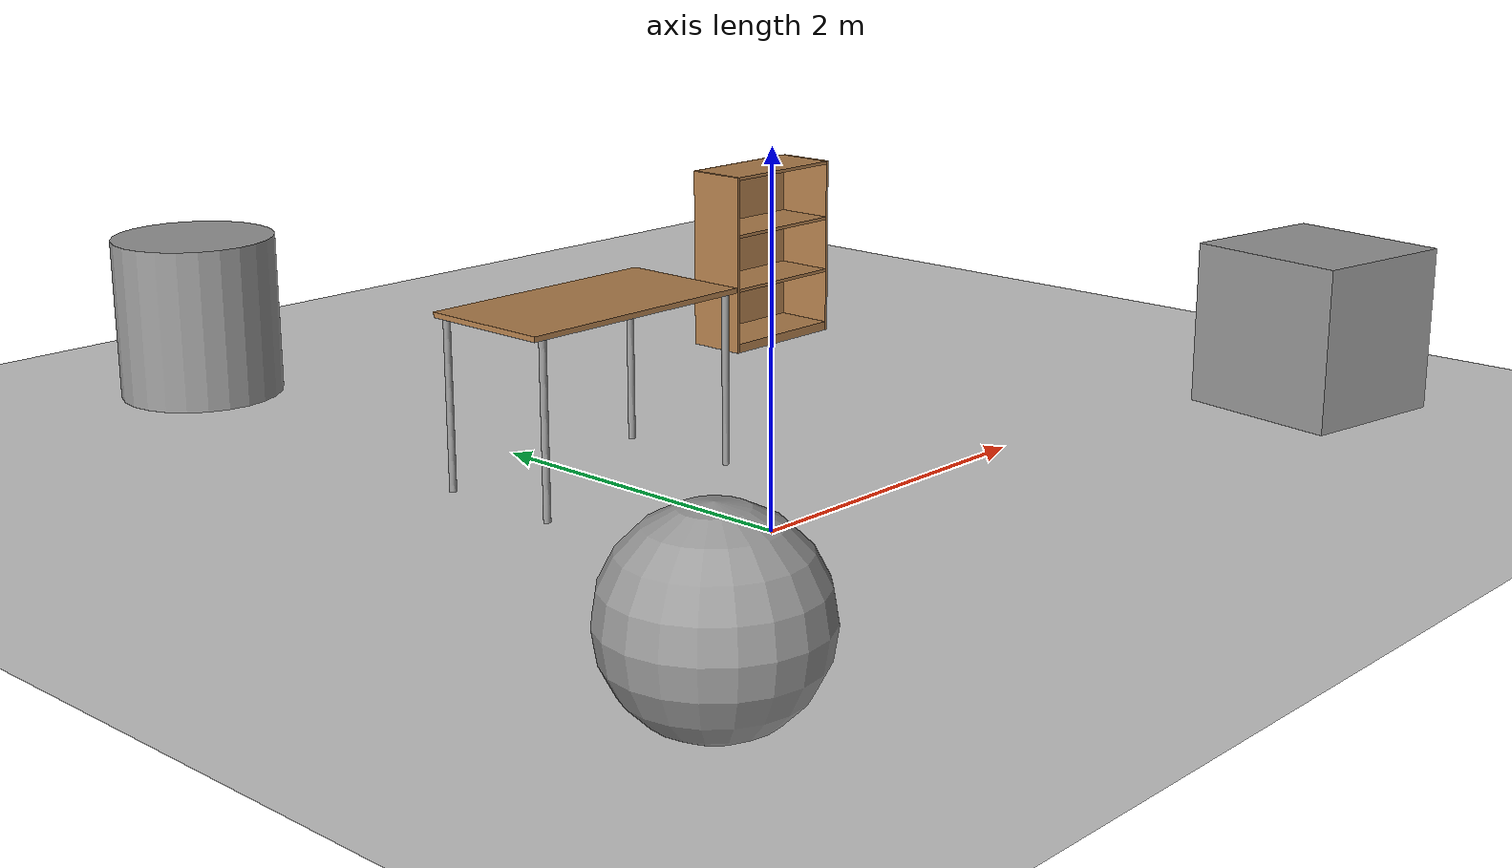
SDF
<sdf version="1.4">
 <world name="default">
  <light name="sun" type="directional">
   <pose>0 0 10 0 -0 0</pose>
   <diffuse>0.8 0.8 0.8 1</diffuse>
   <specular>0.2 0.2 0.2 1</specular>
   <attenuation>
    <range>1000</range>
    <constant>0.9</constant>
    <linear>0.01</linear>
    <quadratic>0.001</quadratic>
   </attenuation>
   <direction>-0.5 0.1 -0.9</direction>
  </light>
  <model name="ground_plane">
   <static>1</static>
   <link name="link">
    <collision name="collision">
     <geometry><plane><normal>0 0 1</normal><size>100 100</size></plane></geometry>
     <surface><friction><ode><mu>100</mu><mu2>50</mu2></ode></friction></surface>
    </collision>
    <visual name="visual">
     <cast_shadows>0</cast_shadows>
     <geometry><plane><normal>0 0 1</normal><size>100 100</size></plane></geometry>
     <material>
      <script><uri>file://media/materials/scripts/gazebo.material</uri><name>Gazebo/Grey</name></script>
     </material>
    </visual>
    <velocity_decay><linear>0</linear><angular>0</angular></velocity_decay>
   </link>
  </model>
  <physics type="ode">
   <max_step_size>0.001</max_step_size>
   <real_time_factor>1</real_time_factor>
   <real_time_update_rate>1000</real_time_update_rate>
   <gravity>0 0 -9.8</gravity>
  </physics>
  <scene><ambient>0.4 0.4 0.4 1</ambient><background>0.7 0.7 0.7 1</background><shadows>1</shadows></scene>
  <spherical_coordinates>
   <surface_model>EARTH_WGS84</surface_model>
   <latitude_deg>0</latitude_deg>
   <longitude_deg>0</longitude_deg>
   <elevation>0</elevation>
   <heading_deg>0</heading_deg>
  </spherical_coordinates>
  <model name="unit_box_1">
   <pose>4.03607 -0.83905 0.5 0 -0 -0.163062</pose>
   <link name="link">
    <inertial>
     <mass>1</mass>
     <inertia><ixx>1</ixx><ixy>0</ixy><ixz>0</ixz><iyy>1</iyy><iyz>0</iyz><izz>1</izz></inertia>
    </inertial>
    <collision name="collision"><geometry><box><size>1 1 1</size></box></geometry></collision>
    <visual name="visual">
     <geometry><box><size>1 1 1</size></box></geometry>
     <material>
      <script><uri>file://media/materials/scripts/gazebo.material</uri><name>Gazebo/Grey</name></script>
     </material>
    </visual>
    <velocity_decay><linear>0</linear><angular>0</angular></velocity_decay>
   </link>
   <static>0</static>
  </model>
  <model name="table">
   <static>1</static>
   <link name="link">
    <collision name="surface">
     <pose>0 0 1 0 -0 0</pose>
     <geometry><box><size>1.5 0.8 0.03</size></box></geometry>
     <surface><friction><ode><mu>0.6</mu><mu2>0.6</mu2></ode></friction></surface>
    </collision>
    <visual name="visual1">
     <pose>0 0 1 0 -0 0</pose>
     <geometry><box><size>1.5 0.8 0.03</size></box></geometry>
     <material>
      <script><uri>file://media/materials/scripts/gazebo.material</uri><name>Gazebo/Wood</name></script>
     </material>
    </visual>
    <collision name="front_left_leg">
     <pose>0.68 0.38 0.5 0 -0 0</pose>
     <geometry><cylinder><radius>0.02</radius><length>1</length></cylinder></geometry>
    </collision>
    <visual name="front_left_leg">
     <pose>0.68 0.38 0.5 0 -0 0</pose>
     <geometry><cylinder><radius>0.02</radius><length>1</length></cylinder></geometry>
     <material>
      <script><uri>file://media/materials/scripts/gazebo.material</uri><name>Gazebo/Grey</name></script>
     </material>
    </visual>
    <collision name="front_right_leg">
     <pose>0.68 -0.38 0.5 0 -0 0</pose>
     <geometry><cylinder><radius>0.02</radius><length>1</length></cylinder></geometry>
    </collision>
    <visual name="front_right_leg">
     <pose>0.68 -0.38 0.5 0 -0 0</pose>
     <geometry><cylinder><radius>0.02</radius><length>1</length></cylinder></geometry>
     <material>
      <script><uri>file://media/materials/scripts/gazebo.material</uri><name>Gazebo/Grey</name></script>
     </material>
    </visual>
    <collision name="back_right_leg">
     <pose>-0.68 -0.38 0.5 0 -0 0</pose>
     <geometry><cylinder><radius>0.02</radius><length>1</length></cylinder></geometry>
    </collision>
    <visual name="back_right_leg">
     <pose>-0.68 -0.38 0.5 0 -0 0</pose>
     <geometry><cylinder><radius>0.02</radius><length>1</length></cylinder></geometry>
     <material>
      <script><uri>file://media/materials/scripts/gazebo.material</uri><name>Gazebo/Grey</name></script>
     </material>
    </visual>
    <collision name="back_left_leg">
     <pose>-0.68 0.38 0.5 0 -0 0</pose>
     <geometry><cylinder><radius>0.02</radius><length>1</length></cylinder></geometry>
    </collision>
    <visual name="back_left_leg">
     <pose>-0.68 0.38 0.5 0 -0 0</pose>
     <geometry><cylinder><radius>0.02</radius><length>1</length></cylinder></geometry>
     <material>
      <script><uri>file://media/materials/scripts/gazebo.material</uri><name>Gazebo/Grey</name></script>
     </material>
    </visual>
    <velocity_decay><linear>0</linear><angular>0</angular></velocity_decay>
   </link>
   <pose>0 1.34472 0 0 -0 0</pose>
  </model>
  <model name="unit_sphere_3">
   <pose>-2 -1.50346 0.5 0 -0 0</pose>
   <link name="link">
    <inertial>
     <mass>1</mass>
     <inertia><ixx>1</ixx><ixy>0</ixy><ixz>0</ixz><iyy>1</iyy><iyz>0</iyz><izz>1</izz></inertia>
    </inertial>
    <collision name="collision"><geometry><sphere><radius>0.5</radius></sphere></geometry></collision>
    <visual name="visual">
     <geometry><sphere><radius>0.5</radius></sphere></geometry>
     <material>
      <script><uri>file://media/materials/scripts/gazebo.material</uri><name>Gazebo/Grey</name></script>
     </material>
    </visual>
    <velocity_decay><linear>0</linear><angular>0</angular></velocity_decay>
   </link>
   <static>0</static>
  </model>
  <model name="unit_cylinder_2">
   <pose>-0.43953 4.46319 0.499992 -1e-06 0 0</pose>
   <link name="link">
    <inertial>
     <mass>1</mass>
     <inertia><ixx>1</ixx><ixy>0</ixy><ixz>0</ixz><iyy>1</iyy><iyz>0</iyz><izz>1</izz></inertia>
    </inertial>
    <collision name="collision">
     <geometry><cylinder><radius>0.5</radius><length>1</length></cylinder></geometry>
    </collision>
    <visual name="visual">
     <geometry><cylinder><radius>0.5</radius><length>1</length></cylinder></geometry>
     <material>
      <script><uri>file://media/materials/scripts/gazebo.material</uri><name>Gazebo/Grey</name></script>
     </material>
    </visual>
    <velocity_decay><linear>0</linear><angular>0</angular></velocity_decay>
   </link>
   <static>0</static>
  </model>
  <model name="bookshelf_0">
   <static>1</static>
   <link name="link">
    <inertial><mass>1</mass></inertial>
    <collision name="back">
     <pose>0 0.005 0.6 0 -0 0</pose>
     <geometry><box><size>0.9 0.01 1.2</size></box></geometry>
    </collision>
    <visual name="visual1">
     <pose>0 0.005 0.6 0 -0 0</pose>
     <geometry><box><size>0.9 0.01 1.2</size></box></geometry>
     <material>
      <script><uri>file://media/materials/scripts/gazebo.material</uri><name>Gazebo/Wood</name></script>
     </material>
    </visual>
    <collision name="left_side">
     <pose>0.45 -0.195 0.6 0 -0 0</pose>
     <geometry><box><size>0.02 0.4 1.2</size></box></geometry>
    </collision>
    <visual name="visual2">
     <pose>0.45 -0.195 0.6 0 -0 0</pose>
     <geometry><box><size>0.02 0.4 1.2</size></box></geometry>
     <material>
      <script><uri>file://media/materials/scripts/gazebo.material</uri><name>Gazebo/Wood</name></script>
     </material>
    </visual>
    <collision name="right_side">
     <pose>-0.45 -0.195 0.6 0 -0 0</pose>
     <geometry><box><size>0.02 0.4 1.2</size></box></geometry>
    </collision>
    <visual name="visual3">
     <pose>-0.45 -0.195 0.6 0 -0 0</pose>
     <geometry><box><size>0.02 0.4 1.2</size></box></geometry>
     <material>
      <script><uri>file://media/materials/scripts/gazebo.material</uri><name>Gazebo/Wood</name></script>
     </material>
    </visual>
    <collision name="bottom">
     <pose>0 -0.195 0.03 0 -0 0</pose>
     <geometry><box><size>0.88 0.4 0.06</size></box></geometry>
    </collision>
    <visual name="visual4">
     <pose>0 -0.195 0.03 0 -0 0</pose>
     <geometry><box><size>0.88 0.4 0.06</size></box></geometry>
     <material>
      <script><uri>file://media/materials/scripts/gazebo.material</uri><name>Gazebo/Wood</name></script>
     </material>
    </visual>
    <collision name="top">
     <pose>0 -0.195 1.19 0 -0 0</pose>
     <geometry><box><size>0.88 0.4 0.02</size></box></geometry>
    </collision>
    <visual name="visual5">
     <pose>0 -0.195 1.19 0 -0 0</pose>
     <geometry><box><size>0.88 0.4 0.02</size></box></geometry>
     <material>
      <script><uri>file://media/materials/scripts/gazebo.material</uri><name>Gazebo/Wood</name></script>
     </material>
    </visual>
    <collision name="low_shelf">
     <pose>0 -0.195 0.43 0 -0 0</pose>
     <geometry><box><size>0.88 0.4 0.02</size></box></geometry>
    </collision>
    <visual name="visual6">
     <pose>0 -0.195 0.43 0 -0 0</pose>
     <geometry><box><size>0.88 0.4 0.02</size></box></geometry>
     <material>
      <script><uri>file://media/materials/scripts/gazebo.material</uri><name>Gazebo/Wood</name></script>
     </material>
    </visual>
    <collision name="high_shelf">
     <pose>0 -0.195 0.8 0 -0 0</pose>
     <geometry><box><size>0.88 0.4 0.02</size></box></geometry>
    </collision>
    <visual name="visual7">
     <pose>0 -0.195 0.8 0 -0 0</pose>
     <geometry><box><size>0.88 0.4 0.02</size></box></geometry>
     <material>
      <script><uri>file://media/materials/scripts/gazebo.material</uri><name>Gazebo/Wood</name></script>
     </material>
    </visual>
    <velocity_decay><linear>0</linear><angular>0</angular></velocity_decay>
   </link>
   <pose>3 3 0 0 -0 0</pose>
  </model>
 </world>
</sdf>
